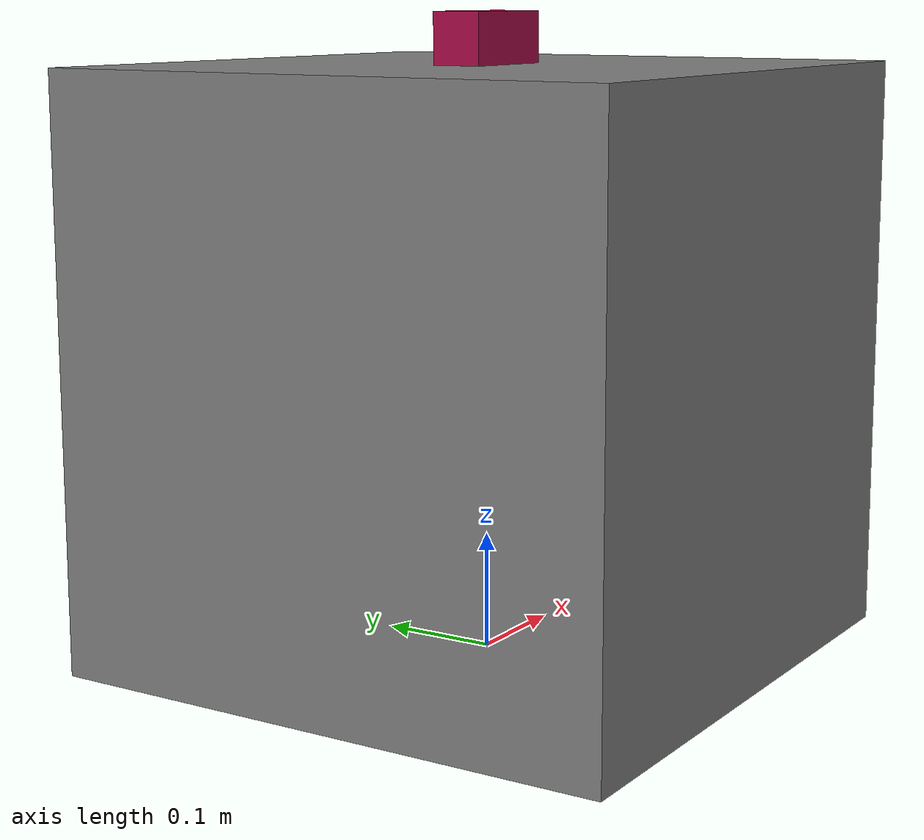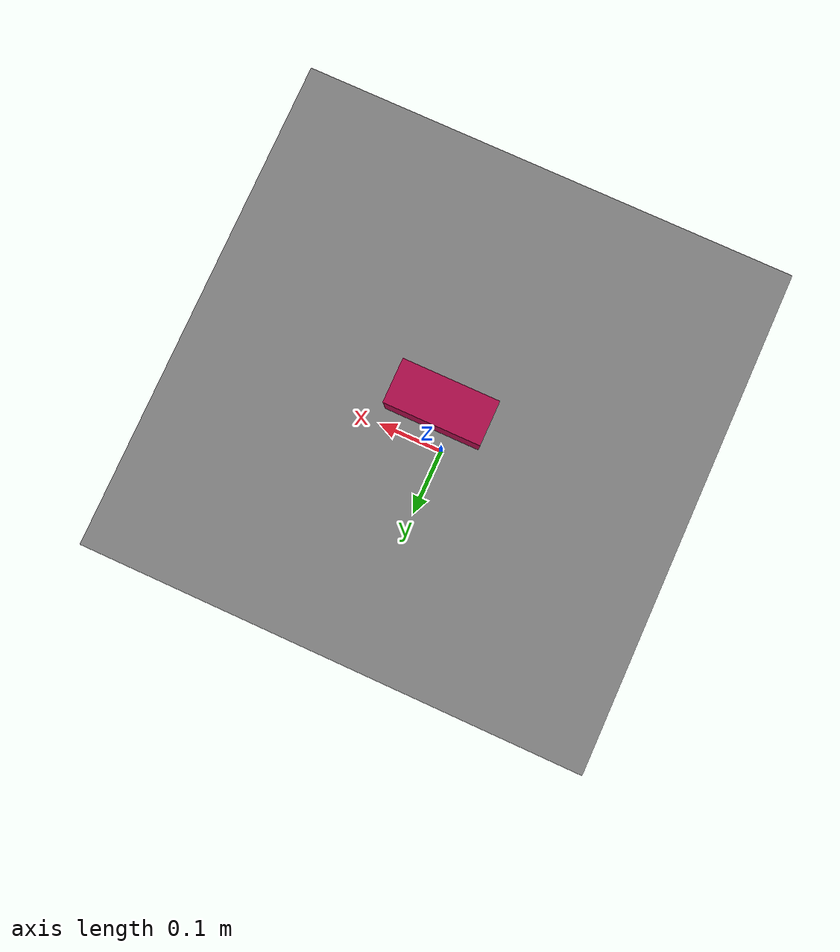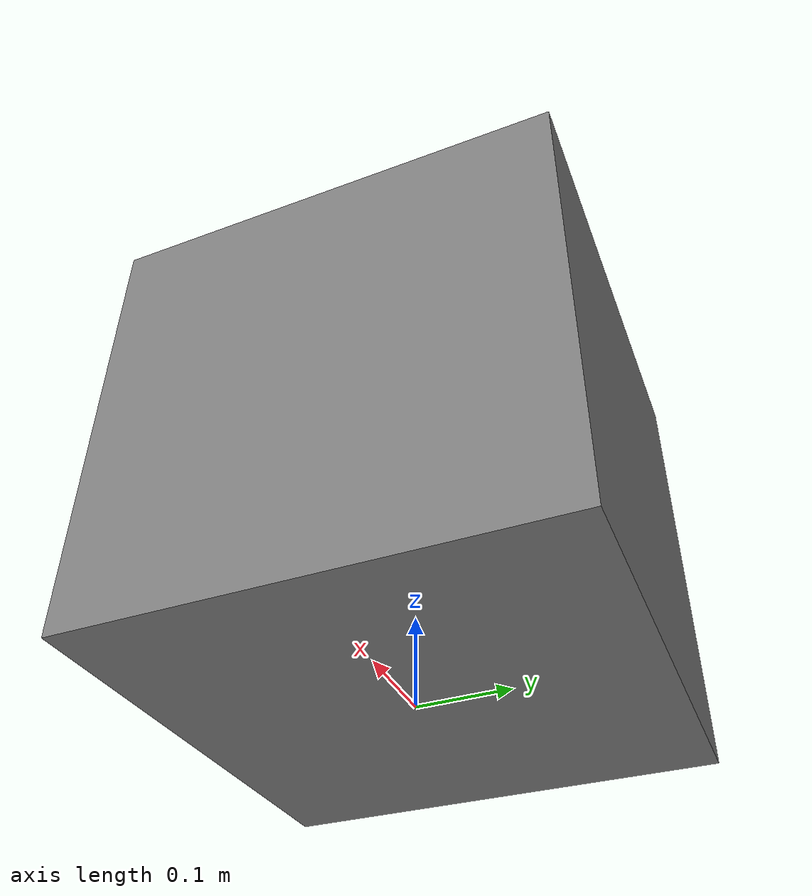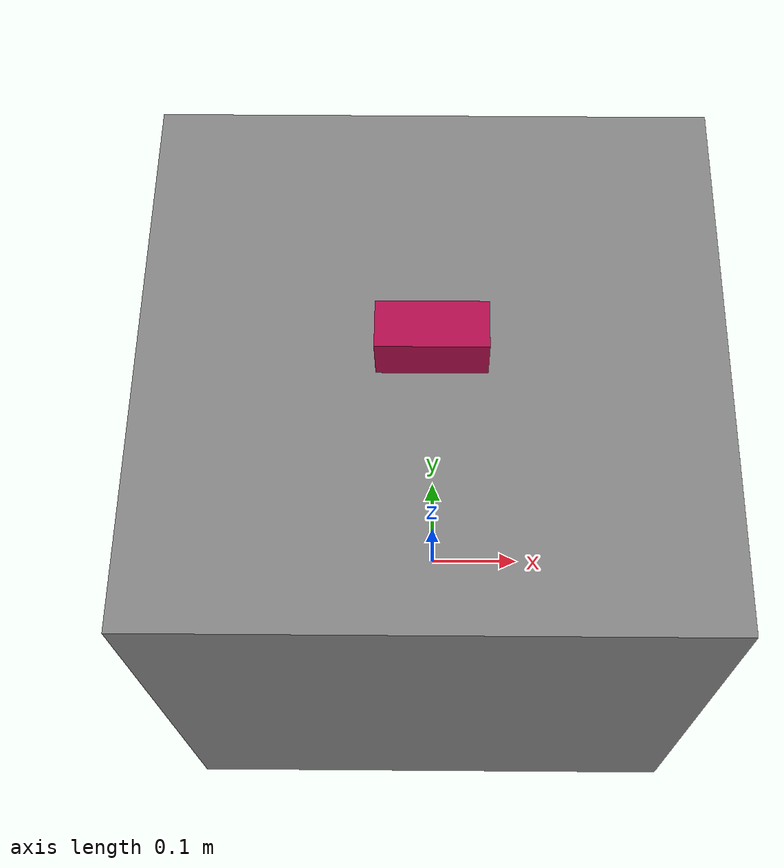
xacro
<?xml version='1.0'?>

<robot name="thermal_test" xmlns:xacro="http://www.ros.org/wiki/xacro">
    <xacro:property name="robot_name" value="thermal_test" />

    <!-- Make Base Link -->
    <link name="base_link">
        <origin rpy="0 0 0" xyz="0 0 0"/>
    </link>

	<!-- Make stand link -->
    <link name="thermal_stand">
        <inertial>
            <origin xyz="0.0 0.0 0.0" rpy="0.0 0.0 0.0"/>
            <mass value="1.0"/>
            <inertia ixx="0.0416666666667" ixy="0.0" ixz="0.0" iyy="0.0416666666667" iyz="0.0" izz="0.0416666666667"/>
        </inertial>
        <visual name="thermal_stand_visual">
            <origin xyz="0.0 0.0 0.0" rpy="0.0 0.0 0.0"/>
            <geometry>
                <box size="0.5 0.5 0.5"/>
            </geometry>
            <material name="thermal_stand">
                <color rgba="0.5 0.5 0.5 1.0"/>
            </material>
        </visual>
        <collision>
            <origin xyz="0.0 0.0 0.0" rpy="0.0 0.0 0.0"/>
            <geometry>
                <box size="0.5 0.5 0.5"/>
            </geometry>
        </collision>
    </link>

    <joint name="base_stand_joint" type="fixed">
        <origin xyz="0.0 0.0 0.25" rpy="0.0 0.0 0.0"/>
        <parent link="base_link"/>
        <child link="thermal_stand"/>
    </joint>

    <link name="thermal">
        <inertial>
            <origin xyz="0.0 0.0 0.0" rpy="0.0 0.0 0.0"/>
            <mass value="0.0"/>
            <inertia ixx="0.0" ixy="0.0" ixz="0.0" iyy="0.0" iyz="0.0" izz="0.0"/>
        </inertial>
        <visual name="thermal_visual">
            <origin xyz="0.0 0.0 0.0" rpy="0.0 0.0 0.0"/>
            <geometry>
                <box size="0.094 0.0433 0.0433"/>
            </geometry>
            <material name="thermal">
                <color rgba="0.6712 0.0431 0.2857 1.0"/>
            </material>
        </visual>
        <collision>
            <origin xyz="0.0 0.0 0.0" rpy="0.0 0.0 0.0"/>
            <geometry>
                <box size="0.094 0.0433 0.0433"/>
            </geometry>
        </collision>
    </link>

    <joint name="stand_thermal_joint" type="fixed">
        <origin xyz="0.0 0.0 0.27165" rpy="0.0 0.0 0.0"/>
        <parent link="thermal_stand"/>
        <child link="thermal"/>
    </joint>

</robot>
